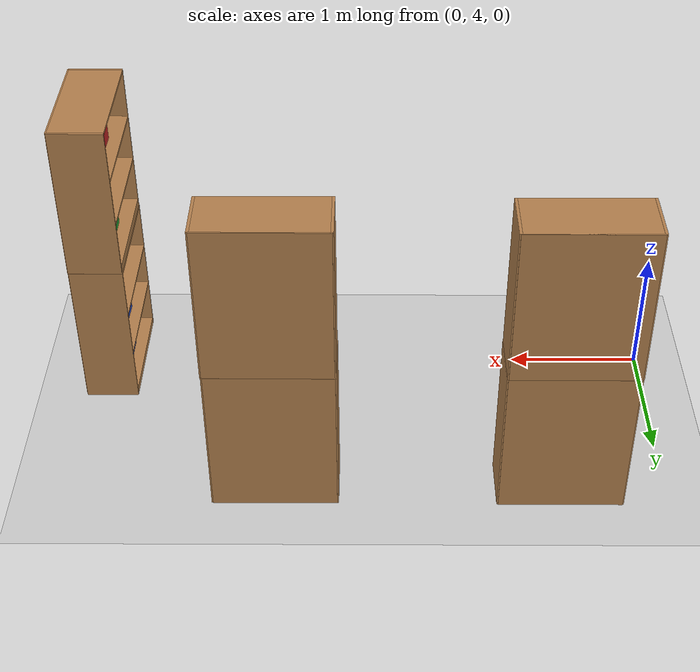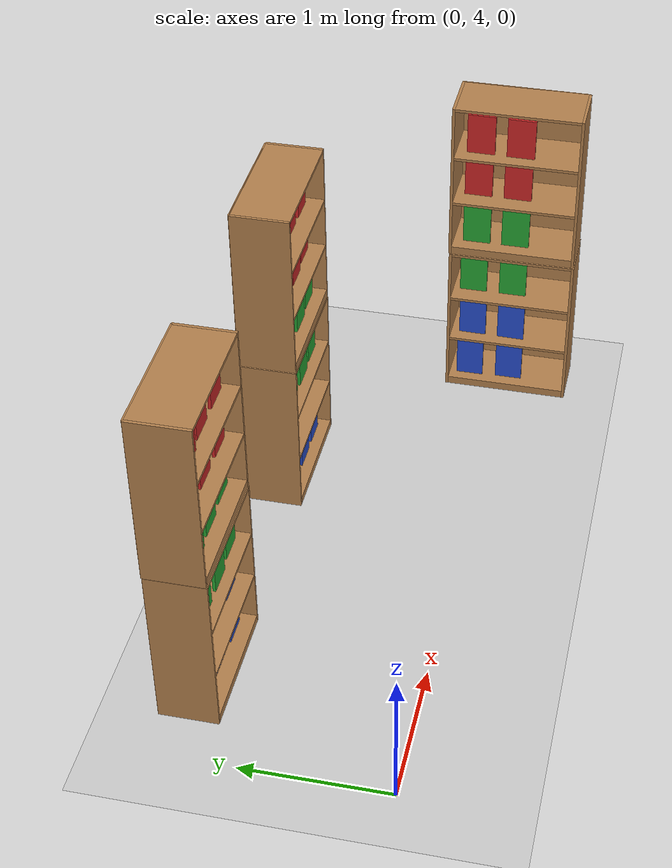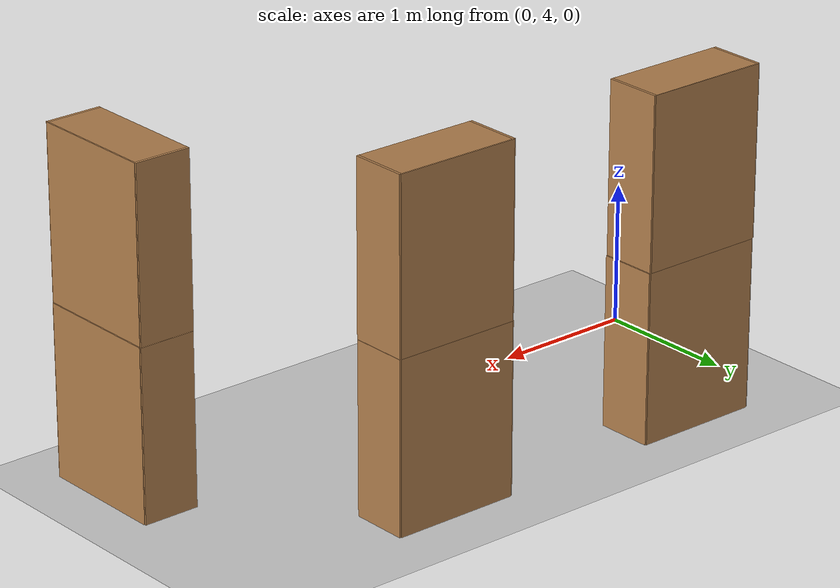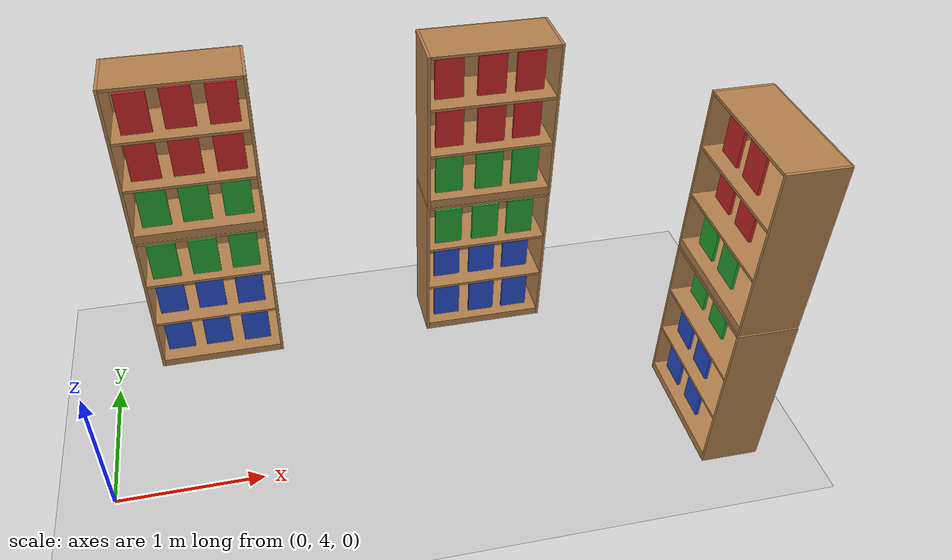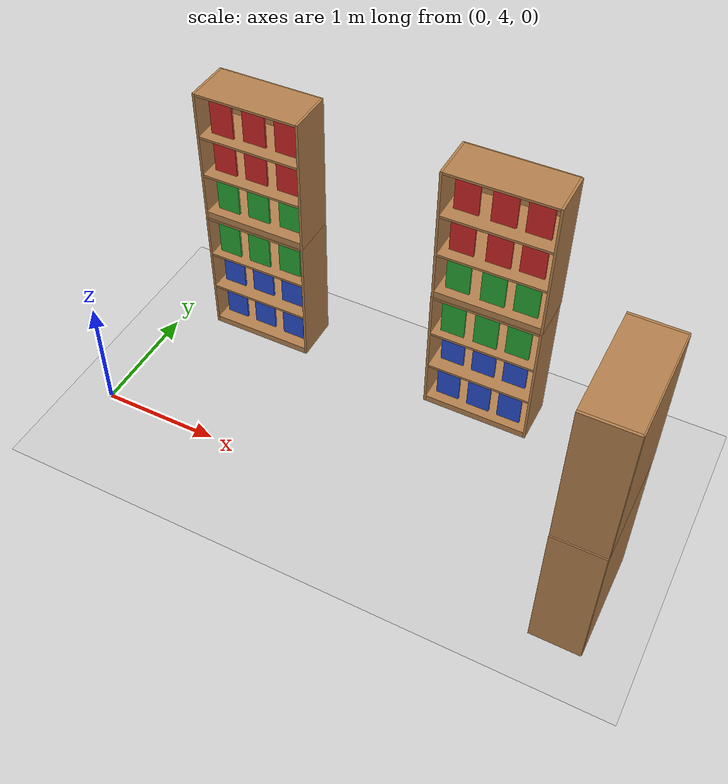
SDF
<sdf version="1.6">
 <world name="default">
  <model name="ground_plane">
   <static>1</static>
   <link name="link">
    <collision name="collision">
     <geometry><plane><normal>0 0 1</normal><size>100 100</size></plane></geometry>
     <surface><friction><ode><mu>100</mu><mu2>50</mu2></ode></friction></surface>
    </collision>
    <visual name="visual">
     <cast_shadows>0</cast_shadows>
     <geometry><plane><normal>0 0 1</normal><size>100 100</size></plane></geometry>
     <material>
      <script><uri>file://media/materials/scripts/gazebo.material</uri><name>Gazebo/Grey</name></script>
     </material>
    </visual>
   </link>
  </model>
  <model name="bookshelf">
   <static>1</static>
   <link name="link">
    <inertial><mass>1</mass></inertial>
    <collision name="back">
     <pose>0 0.005 0.6 0 -0 0</pose>
     <geometry><box><size>0.9 0.01 1.2</size></box></geometry>
    </collision>
    <visual name="visual1">
     <pose>0 0.005 0.6 0 -0 0</pose>
     <geometry><box><size>0.9 0.01 1.2</size></box></geometry>
     <material>
      <script><uri>file://media/materials/scripts/gazebo.material</uri><name>Gazebo/Wood</name></script>
     </material>
    </visual>
    <collision name="left_side">
     <pose>0.45 -0.195 0.6 0 -0 0</pose>
     <geometry><box><size>0.02 0.4 1.2</size></box></geometry>
    </collision>
    <visual name="visual2">
     <pose>0.45 -0.195 0.6 0 -0 0</pose>
     <geometry><box><size>0.02 0.4 1.2</size></box></geometry>
     <material>
      <script><uri>file://media/materials/scripts/gazebo.material</uri><name>Gazebo/Wood</name></script>
     </material>
    </visual>
    <collision name="right_side">
     <pose>-0.45 -0.195 0.6 0 -0 0</pose>
     <geometry><box><size>0.02 0.4 1.2</size></box></geometry>
    </collision>
    <visual name="visual3">
     <pose>-0.45 -0.195 0.6 0 -0 0</pose>
     <geometry><box><size>0.02 0.4 1.2</size></box></geometry>
     <material>
      <script><uri>file://media/materials/scripts/gazebo.material</uri><name>Gazebo/Wood</name></script>
     </material>
    </visual>
    <collision name="bottom">
     <pose>0 -0.195 0.03 0 -0 0</pose>
     <geometry><box><size>0.88 0.4 0.06</size></box></geometry>
    </collision>
    <visual name="visual4">
     <pose>0 -0.195 0.03 0 -0 0</pose>
     <geometry><box><size>0.88 0.4 0.06</size></box></geometry>
     <material>
      <script><uri>file://media/materials/scripts/gazebo.material</uri><name>Gazebo/Wood</name></script>
     </material>
    </visual>
    <collision name="top">
     <pose>0 -0.195 1.19 0 -0 0</pose>
     <geometry><box><size>0.88 0.4 0.02</size></box></geometry>
    </collision>
    <visual name="visual5">
     <pose>0 -0.195 1.19 0 -0 0</pose>
     <geometry><box><size>0.88 0.4 0.02</size></box></geometry>
     <material>
      <script><uri>file://media/materials/scripts/gazebo.material</uri><name>Gazebo/Wood</name></script>
     </material>
    </visual>
    <collision name="low_shelf">
     <pose>0 -0.195 0.43 0 -0 0</pose>
     <geometry><box><size>0.88 0.4 0.02</size></box></geometry>
    </collision>
    <visual name="visual6">
     <pose>0 -0.195 0.43 0 -0 0</pose>
     <geometry><box><size>0.88 0.4 0.02</size></box></geometry>
     <material>
      <script><uri>file://media/materials/scripts/gazebo.material</uri><name>Gazebo/Wood</name></script>
     </material>
    </visual>
    <collision name="high_shelf">
     <pose>0 -0.195 0.8 0 -0 0</pose>
     <geometry><box><size>0.88 0.4 0.02</size></box></geometry>
    </collision>
    <visual name="visual7">
     <pose>0 -0.195 0.8 0 -0 0</pose>
     <geometry><box><size>0.88 0.4 0.02</size></box></geometry>
     <material>
      <script><uri>file://media/materials/scripts/gazebo.material</uri><name>Gazebo/Wood</name></script>
     </material>
    </visual>
   </link>
   <pose>2.83268 5.58259 0 0 -0 0</pose>
  </model>
  <model name="bookshelf_1">
   <static>1</static>
   <link name="link">
    <inertial><mass>1</mass></inertial>
    <collision name="back">
     <pose>0 0.005 0.6 0 -0 0</pose>
     <geometry><box><size>0.9 0.01 1.2</size></box></geometry>
    </collision>
    <visual name="visual1">
     <pose>0 0.005 0.6 0 -0 0</pose>
     <geometry><box><size>0.9 0.01 1.2</size></box></geometry>
     <material>
      <script><uri>file://media/materials/scripts/gazebo.material</uri><name>Gazebo/Wood</name></script>
     </material>
    </visual>
    <collision name="left_side">
     <pose>0.45 -0.195 0.6 0 -0 0</pose>
     <geometry><box><size>0.02 0.4 1.2</size></box></geometry>
    </collision>
    <visual name="visual2">
     <pose>0.45 -0.195 0.6 0 -0 0</pose>
     <geometry><box><size>0.02 0.4 1.2</size></box></geometry>
     <material>
      <script><uri>file://media/materials/scripts/gazebo.material</uri><name>Gazebo/Wood</name></script>
     </material>
    </visual>
    <collision name="right_side">
     <pose>-0.45 -0.195 0.6 0 -0 0</pose>
     <geometry><box><size>0.02 0.4 1.2</size></box></geometry>
    </collision>
    <visual name="visual3">
     <pose>-0.45 -0.195 0.6 0 -0 0</pose>
     <geometry><box><size>0.02 0.4 1.2</size></box></geometry>
     <material>
      <script><uri>file://media/materials/scripts/gazebo.material</uri><name>Gazebo/Wood</name></script>
     </material>
    </visual>
    <collision name="bottom">
     <pose>0 -0.195 0.03 0 -0 0</pose>
     <geometry><box><size>0.88 0.4 0.06</size></box></geometry>
    </collision>
    <visual name="visual4">
     <pose>0 -0.195 0.03 0 -0 0</pose>
     <geometry><box><size>0.88 0.4 0.06</size></box></geometry>
     <material>
      <script><uri>file://media/materials/scripts/gazebo.material</uri><name>Gazebo/Wood</name></script>
     </material>
    </visual>
    <collision name="top">
     <pose>0 -0.195 1.19 0 -0 0</pose>
     <geometry><box><size>0.88 0.4 0.02</size></box></geometry>
    </collision>
    <visual name="visual5">
     <pose>0 -0.195 1.19 0 -0 0</pose>
     <geometry><box><size>0.88 0.4 0.02</size></box></geometry>
     <material>
      <script><uri>file://media/materials/scripts/gazebo.material</uri><name>Gazebo/Wood</name></script>
     </material>
    </visual>
    <collision name="low_shelf">
     <pose>0 -0.195 0.43 0 -0 0</pose>
     <geometry><box><size>0.88 0.4 0.02</size></box></geometry>
    </collision>
    <visual name="visual6">
     <pose>0 -0.195 0.43 0 -0 0</pose>
     <geometry><box><size>0.88 0.4 0.02</size></box></geometry>
     <material>
      <script><uri>file://media/materials/scripts/gazebo.material</uri><name>Gazebo/Wood</name></script>
     </material>
    </visual>
    <collision name="high_shelf">
     <pose>0 -0.195 0.8 0 -0 0</pose>
     <geometry><box><size>0.88 0.4 0.02</size></box></geometry>
    </collision>
    <visual name="visual7">
     <pose>0 -0.195 0.8 0 -0 0</pose>
     <geometry><box><size>0.88 0.4 0.02</size></box></geometry>
     <material>
      <script><uri>file://media/materials/scripts/gazebo.material</uri><name>Gazebo/Wood</name></script>
     </material>
    </visual>
   </link>
   <pose>0.770602 5.5901 0 0 -0 0</pose>
  </model>
  <model name="bookshelf_3_clone_clone_0">
   <static>1</static>
   <link name="link">
    <inertial><mass>1</mass></inertial>
    <collision name="back">
     <pose>0 0.005 0.6 0 -0 0</pose>
     <geometry><box><size>0.9 0.01 1.2</size></box></geometry>
    </collision>
    <visual name="visual1">
     <pose>0 0.005 0.6 0 -0 0</pose>
     <geometry><box><size>0.9 0.01 1.2</size></box></geometry>
     <material>
      <script><uri>file://media/materials/scripts/gazebo.material</uri><name>Gazebo/Wood</name></script>
     </material>
    </visual>
    <collision name="left_side">
     <pose>0.45 -0.195 0.6 0 -0 0</pose>
     <geometry><box><size>0.02 0.4 1.2</size></box></geometry>
    </collision>
    <visual name="visual2">
     <pose>0.45 -0.195 0.6 0 -0 0</pose>
     <geometry><box><size>0.02 0.4 1.2</size></box></geometry>
     <material>
      <script><uri>file://media/materials/scripts/gazebo.material</uri><name>Gazebo/Wood</name></script>
     </material>
    </visual>
    <collision name="right_side">
     <pose>-0.45 -0.195 0.6 0 -0 0</pose>
     <geometry><box><size>0.02 0.4 1.2</size></box></geometry>
    </collision>
    <visual name="visual3">
     <pose>-0.45 -0.195 0.6 0 -0 0</pose>
     <geometry><box><size>0.02 0.4 1.2</size></box></geometry>
     <material>
      <script><uri>file://media/materials/scripts/gazebo.material</uri><name>Gazebo/Wood</name></script>
     </material>
    </visual>
    <collision name="bottom">
     <pose>0 -0.195 0.03 0 -0 0</pose>
     <geometry><box><size>0.88 0.4 0.06</size></box></geometry>
    </collision>
    <visual name="visual4">
     <pose>0 -0.195 0.03 0 -0 0</pose>
     <geometry><box><size>0.88 0.4 0.06</size></box></geometry>
     <material>
      <script><uri>file://media/materials/scripts/gazebo.material</uri><name>Gazebo/Wood</name></script>
     </material>
    </visual>
    <collision name="top">
     <pose>0 -0.195 1.19 0 -0 0</pose>
     <geometry><box><size>0.88 0.4 0.02</size></box></geometry>
    </collision>
    <visual name="visual5">
     <pose>0 -0.195 1.19 0 -0 0</pose>
     <geometry><box><size>0.88 0.4 0.02</size></box></geometry>
     <material>
      <script><uri>file://media/materials/scripts/gazebo.material</uri><name>Gazebo/Wood</name></script>
     </material>
    </visual>
    <collision name="low_shelf">
     <pose>0 -0.195 0.43 0 -0 0</pose>
     <geometry><box><size>0.88 0.4 0.02</size></box></geometry>
    </collision>
    <visual name="visual6">
     <pose>0 -0.195 0.43 0 -0 0</pose>
     <geometry><box><size>0.88 0.4 0.02</size></box></geometry>
     <material>
      <script><uri>file://media/materials/scripts/gazebo.material</uri><name>Gazebo/Wood</name></script>
     </material>
    </visual>
    <collision name="high_shelf">
     <pose>0 -0.195 0.8 0 -0 0</pose>
     <geometry><box><size>0.88 0.4 0.02</size></box></geometry>
    </collision>
    <visual name="visual7">
     <pose>0 -0.195 0.8 0 -0 0</pose>
     <geometry><box><size>0.88 0.4 0.02</size></box></geometry>
     <material>
      <script><uri>file://media/materials/scripts/gazebo.material</uri><name>Gazebo/Wood</name></script>
     </material>
    </visual>
   </link>
   <pose>0.76852 5.59426 1.20481 0 -0 0</pose>
  </model>
  <model name="bookshelf_3_clone_clone_1">
   <static>1</static>
   <link name="link">
    <inertial><mass>1</mass></inertial>
    <collision name="back">
     <pose>0 0.005 0.6 0 -0 0</pose>
     <geometry><box><size>0.9 0.01 1.2</size></box></geometry>
    </collision>
    <visual name="visual1">
     <pose>0 0.005 0.6 0 -0 0</pose>
     <geometry><box><size>0.9 0.01 1.2</size></box></geometry>
     <material>
      <script><uri>file://media/materials/scripts/gazebo.material</uri><name>Gazebo/Wood</name></script>
     </material>
    </visual>
    <collision name="left_side">
     <pose>0.45 -0.195 0.6 0 -0 0</pose>
     <geometry><box><size>0.02 0.4 1.2</size></box></geometry>
    </collision>
    <visual name="visual2">
     <pose>0.45 -0.195 0.6 0 -0 0</pose>
     <geometry><box><size>0.02 0.4 1.2</size></box></geometry>
     <material>
      <script><uri>file://media/materials/scripts/gazebo.material</uri><name>Gazebo/Wood</name></script>
     </material>
    </visual>
    <collision name="right_side">
     <pose>-0.45 -0.195 0.6 0 -0 0</pose>
     <geometry><box><size>0.02 0.4 1.2</size></box></geometry>
    </collision>
    <visual name="visual3">
     <pose>-0.45 -0.195 0.6 0 -0 0</pose>
     <geometry><box><size>0.02 0.4 1.2</size></box></geometry>
     <material>
      <script><uri>file://media/materials/scripts/gazebo.material</uri><name>Gazebo/Wood</name></script>
     </material>
    </visual>
    <collision name="bottom">
     <pose>0 -0.195 0.03 0 -0 0</pose>
     <geometry><box><size>0.88 0.4 0.06</size></box></geometry>
    </collision>
    <visual name="visual4">
     <pose>0 -0.195 0.03 0 -0 0</pose>
     <geometry><box><size>0.88 0.4 0.06</size></box></geometry>
     <material>
      <script><uri>file://media/materials/scripts/gazebo.material</uri><name>Gazebo/Wood</name></script>
     </material>
    </visual>
    <collision name="top">
     <pose>0 -0.195 1.19 0 -0 0</pose>
     <geometry><box><size>0.88 0.4 0.02</size></box></geometry>
    </collision>
    <visual name="visual5">
     <pose>0 -0.195 1.19 0 -0 0</pose>
     <geometry><box><size>0.88 0.4 0.02</size></box></geometry>
     <material>
      <script><uri>file://media/materials/scripts/gazebo.material</uri><name>Gazebo/Wood</name></script>
     </material>
    </visual>
    <collision name="low_shelf">
     <pose>0 -0.195 0.43 0 -0 0</pose>
     <geometry><box><size>0.88 0.4 0.02</size></box></geometry>
    </collision>
    <visual name="visual6">
     <pose>0 -0.195 0.43 0 -0 0</pose>
     <geometry><box><size>0.88 0.4 0.02</size></box></geometry>
     <material>
      <script><uri>file://media/materials/scripts/gazebo.material</uri><name>Gazebo/Wood</name></script>
     </material>
    </visual>
    <collision name="high_shelf">
     <pose>0 -0.195 0.8 0 -0 0</pose>
     <geometry><box><size>0.88 0.4 0.02</size></box></geometry>
    </collision>
    <visual name="visual7">
     <pose>0 -0.195 0.8 0 -0 0</pose>
     <geometry><box><size>0.88 0.4 0.02</size></box></geometry>
     <material>
      <script><uri>file://media/materials/scripts/gazebo.material</uri><name>Gazebo/Wood</name></script>
     </material>
    </visual>
   </link>
   <pose>2.83627 5.58516 1.20481 0 -0 0</pose>
  </model>
  <model name="bookshelf_4_clone">
   <static>1</static>
   <link name="link">
    <inertial><mass>1</mass></inertial>
    <collision name="back">
     <pose>0 0.005 0.6 0 -0 0</pose>
     <geometry><box><size>0.9 0.01 1.2</size></box></geometry>
    </collision>
    <visual name="visual1">
     <pose>0 0.005 0.6 0 -0 0</pose>
     <geometry><box><size>0.9 0.01 1.2</size></box></geometry>
     <material>
      <script><uri>file://media/materials/scripts/gazebo.material</uri><name>Gazebo/Wood</name></script>
     </material>
    </visual>
    <collision name="left_side">
     <pose>0.45 -0.195 0.6 0 -0 0</pose>
     <geometry><box><size>0.02 0.4 1.2</size></box></geometry>
    </collision>
    <visual name="visual2">
     <pose>0.45 -0.195 0.6 0 -0 0</pose>
     <geometry><box><size>0.02 0.4 1.2</size></box></geometry>
     <material>
      <script><uri>file://media/materials/scripts/gazebo.material</uri><name>Gazebo/Wood</name></script>
     </material>
    </visual>
    <collision name="right_side">
     <pose>-0.45 -0.195 0.6 0 -0 0</pose>
     <geometry><box><size>0.02 0.4 1.2</size></box></geometry>
    </collision>
    <visual name="visual3">
     <pose>-0.45 -0.195 0.6 0 -0 0</pose>
     <geometry><box><size>0.02 0.4 1.2</size></box></geometry>
     <material>
      <script><uri>file://media/materials/scripts/gazebo.material</uri><name>Gazebo/Wood</name></script>
     </material>
    </visual>
    <collision name="bottom">
     <pose>0 -0.195 0.03 0 -0 0</pose>
     <geometry><box><size>0.88 0.4 0.06</size></box></geometry>
    </collision>
    <visual name="visual4">
     <pose>0 -0.195 0.03 0 -0 0</pose>
     <geometry><box><size>0.88 0.4 0.06</size></box></geometry>
     <material>
      <script><uri>file://media/materials/scripts/gazebo.material</uri><name>Gazebo/Wood</name></script>
     </material>
    </visual>
    <collision name="top">
     <pose>0 -0.195 1.19 0 -0 0</pose>
     <geometry><box><size>0.88 0.4 0.02</size></box></geometry>
    </collision>
    <visual name="visual5">
     <pose>0 -0.195 1.19 0 -0 0</pose>
     <geometry><box><size>0.88 0.4 0.02</size></box></geometry>
     <material>
      <script><uri>file://media/materials/scripts/gazebo.material</uri><name>Gazebo/Wood</name></script>
     </material>
    </visual>
    <collision name="low_shelf">
     <pose>0 -0.195 0.43 0 -0 0</pose>
     <geometry><box><size>0.88 0.4 0.02</size></box></geometry>
    </collision>
    <visual name="visual6">
     <pose>0 -0.195 0.43 0 -0 0</pose>
     <geometry><box><size>0.88 0.4 0.02</size></box></geometry>
     <material>
      <script><uri>file://media/materials/scripts/gazebo.material</uri><name>Gazebo/Wood</name></script>
     </material>
    </visual>
    <collision name="high_shelf">
     <pose>0 -0.195 0.8 0 -0 0</pose>
     <geometry><box><size>0.88 0.4 0.02</size></box></geometry>
    </collision>
    <visual name="visual7">
     <pose>0 -0.195 0.8 0 -0 0</pose>
     <geometry><box><size>0.88 0.4 0.02</size></box></geometry>
     <material>
      <script><uri>file://media/materials/scripts/gazebo.material</uri><name>Gazebo/Wood</name></script>
     </material>
    </visual>
   </link>
   <pose>4.37345 3.97883 0 0 0 -1.5727</pose>
  </model>
  <model name="bookshelf_4_clone_1_clone_clone">
   <static>1</static>
   <link name="link">
    <inertial><mass>1</mass></inertial>
    <collision name="back">
     <pose>0 0.005 0.6 0 -0 0</pose>
     <geometry><box><size>0.9 0.01 1.2</size></box></geometry>
    </collision>
    <visual name="visual1">
     <pose>0 0.005 0.6 0 -0 0</pose>
     <geometry><box><size>0.9 0.01 1.2</size></box></geometry>
     <material>
      <script><uri>file://media/materials/scripts/gazebo.material</uri><name>Gazebo/Wood</name></script>
     </material>
    </visual>
    <collision name="left_side">
     <pose>0.45 -0.195 0.6 0 -0 0</pose>
     <geometry><box><size>0.02 0.4 1.2</size></box></geometry>
    </collision>
    <visual name="visual2">
     <pose>0.45 -0.195 0.6 0 -0 0</pose>
     <geometry><box><size>0.02 0.4 1.2</size></box></geometry>
     <material>
      <script><uri>file://media/materials/scripts/gazebo.material</uri><name>Gazebo/Wood</name></script>
     </material>
    </visual>
    <collision name="right_side">
     <pose>-0.45 -0.195 0.6 0 -0 0</pose>
     <geometry><box><size>0.02 0.4 1.2</size></box></geometry>
    </collision>
    <visual name="visual3">
     <pose>-0.45 -0.195 0.6 0 -0 0</pose>
     <geometry><box><size>0.02 0.4 1.2</size></box></geometry>
     <material>
      <script><uri>file://media/materials/scripts/gazebo.material</uri><name>Gazebo/Wood</name></script>
     </material>
    </visual>
    <collision name="bottom">
     <pose>0 -0.195 0.03 0 -0 0</pose>
     <geometry><box><size>0.88 0.4 0.06</size></box></geometry>
    </collision>
    <visual name="visual4">
     <pose>0 -0.195 0.03 0 -0 0</pose>
     <geometry><box><size>0.88 0.4 0.06</size></box></geometry>
     <material>
      <script><uri>file://media/materials/scripts/gazebo.material</uri><name>Gazebo/Wood</name></script>
     </material>
    </visual>
    <collision name="top">
     <pose>0 -0.195 1.19 0 -0 0</pose>
     <geometry><box><size>0.88 0.4 0.02</size></box></geometry>
    </collision>
    <visual name="visual5">
     <pose>0 -0.195 1.19 0 -0 0</pose>
     <geometry><box><size>0.88 0.4 0.02</size></box></geometry>
     <material>
      <script><uri>file://media/materials/scripts/gazebo.material</uri><name>Gazebo/Wood</name></script>
     </material>
    </visual>
    <collision name="low_shelf">
     <pose>0 -0.195 0.43 0 -0 0</pose>
     <geometry><box><size>0.88 0.4 0.02</size></box></geometry>
    </collision>
    <visual name="visual6">
     <pose>0 -0.195 0.43 0 -0 0</pose>
     <geometry><box><size>0.88 0.4 0.02</size></box></geometry>
     <material>
      <script><uri>file://media/materials/scripts/gazebo.material</uri><name>Gazebo/Wood</name></script>
     </material>
    </visual>
    <collision name="high_shelf">
     <pose>0 -0.195 0.8 0 -0 0</pose>
     <geometry><box><size>0.88 0.4 0.02</size></box></geometry>
    </collision>
    <visual name="visual7">
     <pose>0 -0.195 0.8 0 -0 0</pose>
     <geometry><box><size>0.88 0.4 0.02</size></box></geometry>
     <material>
      <script><uri>file://media/materials/scripts/gazebo.material</uri><name>Gazebo/Wood</name></script>
     </material>
    </visual>
   </link>
   <pose>4.37481 3.98386 1.20741 0 0 -1.5727</pose>
  </model>
  <model name="bluecube_0_clone_clone_4">
   <static>1</static>
   <link name="link">
    <pose>0 0 0.21 0 -0 0</pose>
    <collision name="collision"><geometry><box><size>0.2 0.02 0.3</size></box></geometry></collision>
    <visual name="visual">
     <geometry><box><size>0.2 0.02 0.3</size></box></geometry>
     <material>
      <script><uri>file://media/materials/scripts/gazebo.material</uri><name>Gazebo/Blue</name></script>
     </material>
    </visual>
   </link>
   <pose>0.468014 5.31757 0 0 -0 0</pose>
  </model>
  <model name="bluecube_0_clone_clone_5">
   <static>1</static>
   <link name="link">
    <pose>0 0 0.21 0 -0 0</pose>
    <collision name="collision"><geometry><box><size>0.2 0.02 0.3</size></box></geometry></collision>
    <visual name="visual">
     <geometry><box><size>0.2 0.02 0.3</size></box></geometry>
     <material>
      <script><uri>file://media/materials/scripts/gazebo.material</uri><name>Gazebo/Blue</name></script>
     </material>
    </visual>
   </link>
   <pose>0.754162 5.31682 0 0 -0 0</pose>
  </model>
  <model name="bluecube_0_clone_clone_6">
   <static>1</static>
   <link name="link">
    <pose>0 0 0.21 0 -0 0</pose>
    <collision name="collision"><geometry><box><size>0.2 0.02 0.3</size></box></geometry></collision>
    <visual name="visual">
     <geometry><box><size>0.2 0.02 0.3</size></box></geometry>
     <material>
      <script><uri>file://media/materials/scripts/gazebo.material</uri><name>Gazebo/Blue</name></script>
     </material>
    </visual>
   </link>
   <pose>1.04547 5.30622 0 0 -0 0</pose>
  </model>
  <model name="bluecube_0_clone_clone_7">
   <static>1</static>
   <link name="link">
    <pose>0 0 0.21 0 -0 0</pose>
    <collision name="collision"><geometry><box><size>0.2 0.02 0.3</size></box></geometry></collision>
    <visual name="visual">
     <geometry><box><size>0.2 0.02 0.3</size></box></geometry>
     <material>
      <script><uri>file://media/materials/scripts/gazebo.material</uri><name>Gazebo/Blue</name></script>
     </material>
    </visual>
   </link>
   <pose>2.5505 5.28699 0 0 -0 0</pose>
  </model>
  <model name="bluecube_0_clone_clone_8">
   <static>1</static>
   <link name="link">
    <pose>0 0 0.21 0 -0 0</pose>
    <collision name="collision"><geometry><box><size>0.2 0.02 0.3</size></box></geometry></collision>
    <visual name="visual">
     <geometry><box><size>0.2 0.02 0.3</size></box></geometry>
     <material>
      <script><uri>file://media/materials/scripts/gazebo.material</uri><name>Gazebo/Blue</name></script>
     </material>
    </visual>
   </link>
   <pose>2.82936 5.27767 0 0 -0 0</pose>
  </model>
  <model name="bluecube_0_clone_clone_9">
   <static>1</static>
   <link name="link">
    <pose>0 0 0.21 0 -0 0</pose>
    <collision name="collision"><geometry><box><size>0.2 0.02 0.3</size></box></geometry></collision>
    <visual name="visual">
     <geometry><box><size>0.2 0.02 0.3</size></box></geometry>
     <material>
      <script><uri>file://media/materials/scripts/gazebo.material</uri><name>Gazebo/Blue</name></script>
     </material>
    </visual>
   </link>
   <pose>3.10055 5.27809 0 0 -0 0</pose>
  </model>
  <model name="bluecube_0_clone_clone_10_clone_clone_3">
   <static>1</static>
   <link name="link">
    <pose>0 0 0.21 0 -0 0</pose>
    <collision name="collision"><geometry><box><size>0.2 0.02 0.3</size></box></geometry></collision>
    <visual name="visual">
     <geometry><box><size>0.2 0.02 0.3</size></box></geometry>
     <material>
      <script><uri>file://media/materials/scripts/gazebo.material</uri><name>Gazebo/Blue</name></script>
     </material>
    </visual>
   </link>
   <pose>0.472026 5.31573 0.38097 0 -0 0</pose>
  </model>
  <model name="bluecube_0_clone_clone_10_clone_clone_4">
   <static>1</static>
   <link name="link">
    <pose>0 0 0.21 0 -0 0</pose>
    <collision name="collision"><geometry><box><size>0.2 0.02 0.3</size></box></geometry></collision>
    <visual name="visual">
     <geometry><box><size>0.2 0.02 0.3</size></box></geometry>
     <material>
      <script><uri>file://media/materials/scripts/gazebo.material</uri><name>Gazebo/Blue</name></script>
     </material>
    </visual>
   </link>
   <pose>0.756127 5.31976 0.38097 0 -0 0</pose>
  </model>
  <model name="bluecube_0_clone_clone_10_clone_clone_5">
   <static>1</static>
   <link name="link">
    <pose>0 0 0.21 0 -0 0</pose>
    <collision name="collision"><geometry><box><size>0.2 0.02 0.3</size></box></geometry></collision>
    <visual name="visual">
     <geometry><box><size>0.2 0.02 0.3</size></box></geometry>
     <material>
      <script><uri>file://media/materials/scripts/gazebo.material</uri><name>Gazebo/Blue</name></script>
     </material>
    </visual>
   </link>
   <pose>1.0445 5.31348 0.38097 0 -0 0</pose>
  </model>
  <model name="bluecube_0_clone_clone_10_clone_clone_6">
   <static>1</static>
   <link name="link">
    <pose>0 0 0.21 0 -0 0</pose>
    <collision name="collision"><geometry><box><size>0.2 0.02 0.3</size></box></geometry></collision>
    <visual name="visual">
     <geometry><box><size>0.2 0.02 0.3</size></box></geometry>
     <material>
      <script><uri>file://media/materials/scripts/gazebo.material</uri><name>Gazebo/Blue</name></script>
     </material>
    </visual>
   </link>
   <pose>2.55199 5.31798 0.38097 0 -0 0</pose>
  </model>
  <model name="bluecube_0_clone_clone_10_clone_clone_7">
   <static>1</static>
   <link name="link">
    <pose>0 0 0.21 0 -0 0</pose>
    <collision name="collision"><geometry><box><size>0.2 0.02 0.3</size></box></geometry></collision>
    <visual name="visual">
     <geometry><box><size>0.2 0.02 0.3</size></box></geometry>
     <material>
      <script><uri>file://media/materials/scripts/gazebo.material</uri><name>Gazebo/Blue</name></script>
     </material>
    </visual>
   </link>
   <pose>2.82669 5.31199 0.38097 0 -0 0</pose>
  </model>
  <model name="bluecube_0_clone_clone_10_clone_clone_8">
   <static>1</static>
   <link name="link">
    <pose>0 0 0.21 0 -0 0</pose>
    <collision name="collision"><geometry><box><size>0.2 0.02 0.3</size></box></geometry></collision>
    <visual name="visual">
     <geometry><box><size>0.2 0.02 0.3</size></box></geometry>
     <material>
      <script><uri>file://media/materials/scripts/gazebo.material</uri><name>Gazebo/Blue</name></script>
     </material>
    </visual>
   </link>
   <pose>3.0963 5.31613 0.38097 0 -0 0</pose>
  </model>
  <model name="bluecube_0_clone_clone_9_clone_11_clone">
   <static>1</static>
   <link name="link">
    <pose>0 0 0.21 0 -0 0</pose>
    <collision name="collision"><geometry><box><size>0.2 0.02 0.3</size></box></geometry></collision>
    <visual name="visual">
     <geometry><box><size>0.2 0.02 0.3</size></box></geometry>
     <material>
      <script><uri>file://media/materials/scripts/gazebo.material</uri><name>Gazebo/Blue</name></script>
     </material>
    </visual>
   </link>
   <pose>4.08017 3.96905 0 0 -0 1.57146</pose>
  </model>
  <model name="bluecube_0_clone_clone_9_clone_11_clone_clone">
   <static>1</static>
   <link name="link">
    <pose>0 0 0.21 0 -0 0</pose>
    <collision name="collision"><geometry><box><size>0.2 0.02 0.3</size></box></geometry></collision>
    <visual name="visual">
     <geometry><box><size>0.2 0.02 0.3</size></box></geometry>
     <material>
      <script><uri>file://media/materials/scripts/gazebo.material</uri><name>Gazebo/Blue</name></script>
     </material>
    </visual>
   </link>
   <pose>4.07051 4.26836 0 0 -0 1.57146</pose>
  </model>
  <model name="bluecube_0_clone_clone_10_clone_clone_21_clone">
   <static>1</static>
   <link name="link">
    <pose>0 0 0.21 0 -0 0</pose>
    <collision name="collision"><geometry><box><size>0.2 0.02 0.3</size></box></geometry></collision>
    <visual name="visual">
     <geometry><box><size>0.2 0.02 0.3</size></box></geometry>
     <material>
      <script><uri>file://media/materials/scripts/gazebo.material</uri><name>Gazebo/Blue</name></script>
     </material>
    </visual>
   </link>
   <pose>4.07606 3.96812 0.38097 0 -0 1.5507</pose>
  </model>
  <model name="bluecube_0_clone_clone_10_clone_clone_21_clone_clone">
   <static>1</static>
   <link name="link">
    <pose>0 0 0.21 0 -0 0</pose>
    <collision name="collision"><geometry><box><size>0.2 0.02 0.3</size></box></geometry></collision>
    <visual name="visual">
     <geometry><box><size>0.2 0.02 0.3</size></box></geometry>
     <material>
      <script><uri>file://media/materials/scripts/gazebo.material</uri><name>Gazebo/Blue</name></script>
     </material>
    </visual>
   </link>
   <pose>4.08251 4.25931 0.38097 0 -0 1.5507</pose>
  </model>
  <model name="greencube_clone_clone_4">
   <static>1</static>
   <link name="link">
    <pose>0 0 0.21 0 -0 0</pose>
    <collision name="collision"><geometry><box><size>0.2 0.02 0.3</size></box></geometry></collision>
    <visual name="visual">
     <geometry><box><size>0.2 0.02 0.3</size></box></geometry>
     <material>
      <script><uri>file://media/materials/scripts/gazebo.material</uri><name>Gazebo/Green</name></script>
     </material>
    </visual>
   </link>
   <pose>0.479402 5.2791 0.751098 0 -0 0</pose>
  </model>
  <model name="greencube_clone_clone_5">
   <static>1</static>
   <link name="link">
    <pose>0 0 0.21 0 -0 0</pose>
    <collision name="collision"><geometry><box><size>0.2 0.02 0.3</size></box></geometry></collision>
    <visual name="visual">
     <geometry><box><size>0.2 0.02 0.3</size></box></geometry>
     <material>
      <script><uri>file://media/materials/scripts/gazebo.material</uri><name>Gazebo/Green</name></script>
     </material>
    </visual>
   </link>
   <pose>0.76459 5.27927 0.751098 0 -0 0</pose>
  </model>
  <model name="greencube_clone_clone_6">
   <static>1</static>
   <link name="link">
    <pose>0 0 0.21 0 -0 0</pose>
    <collision name="collision"><geometry><box><size>0.2 0.02 0.3</size></box></geometry></collision>
    <visual name="visual">
     <geometry><box><size>0.2 0.02 0.3</size></box></geometry>
     <material>
      <script><uri>file://media/materials/scripts/gazebo.material</uri><name>Gazebo/Green</name></script>
     </material>
    </visual>
   </link>
   <pose>1.04906 5.29278 0.751098 0 -0 0</pose>
  </model>
  <model name="greencube_clone_clone_7">
   <static>1</static>
   <link name="link">
    <pose>0 0 0.21 0 -0 0</pose>
    <collision name="collision"><geometry><box><size>0.2 0.02 0.3</size></box></geometry></collision>
    <visual name="visual">
     <geometry><box><size>0.2 0.02 0.3</size></box></geometry>
     <material>
      <script><uri>file://media/materials/scripts/gazebo.material</uri><name>Gazebo/Green</name></script>
     </material>
    </visual>
   </link>
   <pose>2.55031 5.26868 0.751098 0 -0 0</pose>
  </model>
  <model name="greencube_clone_clone_8">
   <static>1</static>
   <link name="link">
    <pose>0 0 0.21 0 -0 0</pose>
    <collision name="collision"><geometry><box><size>0.2 0.02 0.3</size></box></geometry></collision>
    <visual name="visual">
     <geometry><box><size>0.2 0.02 0.3</size></box></geometry>
     <material>
      <script><uri>file://media/materials/scripts/gazebo.material</uri><name>Gazebo/Green</name></script>
     </material>
    </visual>
   </link>
   <pose>2.82967 5.26886 0.751098 0 -0 0</pose>
  </model>
  <model name="greencube_clone_clone_9">
   <static>1</static>
   <link name="link">
    <pose>0 0 0.21 0 -0 0</pose>
    <collision name="collision"><geometry><box><size>0.2 0.02 0.3</size></box></geometry></collision>
    <visual name="visual">
     <geometry><box><size>0.2 0.02 0.3</size></box></geometry>
     <material>
      <script><uri>file://media/materials/scripts/gazebo.material</uri><name>Gazebo/Green</name></script>
     </material>
    </visual>
   </link>
   <pose>3.09847 5.27724 0.751098 0 -0 0</pose>
  </model>
  <model name="greencube_clone_clone_22_clone">
   <static>1</static>
   <link name="link">
    <pose>0 0 0.21 0 -0 0</pose>
    <collision name="collision"><geometry><box><size>0.2 0.02 0.3</size></box></geometry></collision>
    <visual name="visual">
     <geometry><box><size>0.2 0.02 0.3</size></box></geometry>
     <material>
      <script><uri>file://media/materials/scripts/gazebo.material</uri><name>Gazebo/Green</name></script>
     </material>
    </visual>
   </link>
   <pose>4.12258 3.97614 0.751098 0 -0 1.56837</pose>
  </model>
  <model name="greencube_clone_clone_22_clone_clone_0">
   <static>1</static>
   <link name="link">
    <pose>0 0 0.21 0 -0 0</pose>
    <collision name="collision"><geometry><box><size>0.2 0.02 0.3</size></box></geometry></collision>
    <visual name="visual">
     <geometry><box><size>0.2 0.02 0.3</size></box></geometry>
     <material>
      <script><uri>file://media/materials/scripts/gazebo.material</uri><name>Gazebo/Green</name></script>
     </material>
    </visual>
   </link>
   <pose>4.1216 4.27019 0.751098 0 -0 1.56837</pose>
  </model>
  <model name="greencube_clone_clone_0_clone_clone_clone_4">
   <static>1</static>
   <link name="link">
    <pose>0 0 0.21 0 -0 0</pose>
    <collision name="collision"><geometry><box><size>0.2 0.02 0.3</size></box></geometry></collision>
    <visual name="visual">
     <geometry><box><size>0.2 0.02 0.3</size></box></geometry>
     <material>
      <script><uri>file://media/materials/scripts/gazebo.material</uri><name>Gazebo/Green</name></script>
     </material>
    </visual>
   </link>
   <pose>0.488177 5.2983 1.20525 0 -0 0</pose>
  </model>
  <model name="greencube_clone_clone_0_clone_clone_clone_5">
   <static>1</static>
   <link name="link">
    <pose>0 0 0.21 0 -0 0</pose>
    <collision name="collision"><geometry><box><size>0.2 0.02 0.3</size></box></geometry></collision>
    <visual name="visual">
     <geometry><box><size>0.2 0.02 0.3</size></box></geometry>
     <material>
      <script><uri>file://media/materials/scripts/gazebo.material</uri><name>Gazebo/Green</name></script>
     </material>
    </visual>
   </link>
   <pose>0.76769 5.30905 1.20525 0 -0 0</pose>
  </model>
  <model name="greencube_clone_clone_0_clone_clone_clone_6">
   <static>1</static>
   <link name="link">
    <pose>0 0 0.21 0 -0 0</pose>
    <collision name="collision"><geometry><box><size>0.2 0.02 0.3</size></box></geometry></collision>
    <visual name="visual">
     <geometry><box><size>0.2 0.02 0.3</size></box></geometry>
     <material>
      <script><uri>file://media/materials/scripts/gazebo.material</uri><name>Gazebo/Green</name></script>
     </material>
    </visual>
   </link>
   <pose>1.05684 5.32016 1.20525 0 -0 0</pose>
  </model>
  <model name="greencube_clone_clone_0_clone_clone_clone_7">
   <static>1</static>
   <link name="link">
    <pose>0 0 0.21 0 -0 0</pose>
    <collision name="collision"><geometry><box><size>0.2 0.02 0.3</size></box></geometry></collision>
    <visual name="visual">
     <geometry><box><size>0.2 0.02 0.3</size></box></geometry>
     <material>
      <script><uri>file://media/materials/scripts/gazebo.material</uri><name>Gazebo/Green</name></script>
     </material>
    </visual>
   </link>
   <pose>2.55313 5.28773 1.20525 0 -0 0</pose>
  </model>
  <model name="greencube_clone_clone_0_clone_clone_clone_8">
   <static>1</static>
   <link name="link">
    <pose>0 0 0.21 0 -0 0</pose>
    <collision name="collision"><geometry><box><size>0.2 0.02 0.3</size></box></geometry></collision>
    <visual name="visual">
     <geometry><box><size>0.2 0.02 0.3</size></box></geometry>
     <material>
      <script><uri>file://media/materials/scripts/gazebo.material</uri><name>Gazebo/Green</name></script>
     </material>
    </visual>
   </link>
   <pose>2.84588 5.2789 1.20525 0 -0 0</pose>
  </model>
  <model name="greencube_clone_clone_0_clone_clone_clone_9">
   <static>1</static>
   <link name="link">
    <pose>0 0 0.21 0 -0 0</pose>
    <collision name="collision"><geometry><box><size>0.2 0.02 0.3</size></box></geometry></collision>
    <visual name="visual">
     <geometry><box><size>0.2 0.02 0.3</size></box></geometry>
     <material>
      <script><uri>file://media/materials/scripts/gazebo.material</uri><name>Gazebo/Green</name></script>
     </material>
    </visual>
   </link>
   <pose>3.11452 5.28922 1.20525 0 -0 0</pose>
  </model>
  <model name="greencube_clone_clone_22_clone_clone_10_clone_clone_clone_10">
   <static>1</static>
   <link name="link">
    <pose>0 0 0.21 0 -0 0</pose>
    <collision name="collision"><geometry><box><size>0.2 0.02 0.3</size></box></geometry></collision>
    <visual name="visual">
     <geometry><box><size>0.2 0.02 0.3</size></box></geometry>
     <material>
      <script><uri>file://media/materials/scripts/gazebo.material</uri><name>Gazebo/Green</name></script>
     </material>
    </visual>
   </link>
   <pose>4.08636 4.25471 1.21098 0 -0 1.56837</pose>
  </model>
  <model name="greencube_clone_clone_22_clone_clone_10_clone_clone_clone_11">
   <static>1</static>
   <link name="link">
    <pose>0 0 0.21 0 -0 0</pose>
    <collision name="collision"><geometry><box><size>0.2 0.02 0.3</size></box></geometry></collision>
    <visual name="visual">
     <geometry><box><size>0.2 0.02 0.3</size></box></geometry>
     <material>
      <script><uri>file://media/materials/scripts/gazebo.material</uri><name>Gazebo/Green</name></script>
     </material>
    </visual>
   </link>
   <pose>4.08711 3.97171 1.21098 0 -0 1.56837</pose>
  </model>
  <model name="redcube_clone_clone_4">
   <static>1</static>
   <link name="link">
    <pose>0 0 0.21 0 -0 0</pose>
    <collision name="collision"><geometry><box><size>0.2 0.02 0.3</size></box></geometry></collision>
    <visual name="visual">
     <geometry><box><size>0.2 0.02 0.3</size></box></geometry>
     <material>
      <script><uri>file://media/materials/scripts/gazebo.material</uri><name>Gazebo/Red</name></script>
     </material>
    </visual>
   </link>
   <pose>0.484963 5.31098 1.58534 0 -0 0</pose>
  </model>
  <model name="redcube_clone_clone_5">
   <static>1</static>
   <link name="link">
    <pose>0 0 0.21 0 -0 0</pose>
    <collision name="collision"><geometry><box><size>0.2 0.02 0.3</size></box></geometry></collision>
    <visual name="visual">
     <geometry><box><size>0.2 0.02 0.3</size></box></geometry>
     <material>
      <script><uri>file://media/materials/scripts/gazebo.material</uri><name>Gazebo/Red</name></script>
     </material>
    </visual>
   </link>
   <pose>0.764757 5.31681 1.58534 0 -0 0</pose>
  </model>
  <model name="redcube_clone_clone_6">
   <static>1</static>
   <link name="link">
    <pose>0 0 0.21 0 -0 0</pose>
    <collision name="collision"><geometry><box><size>0.2 0.02 0.3</size></box></geometry></collision>
    <visual name="visual">
     <geometry><box><size>0.2 0.02 0.3</size></box></geometry>
     <material>
      <script><uri>file://media/materials/scripts/gazebo.material</uri><name>Gazebo/Red</name></script>
     </material>
    </visual>
   </link>
   <pose>1.0556 5.3147 1.58534 0 -0 0</pose>
  </model>
  <model name="redcube_clone_clone_7">
   <static>1</static>
   <link name="link">
    <pose>0 0 0.21 0 -0 0</pose>
    <collision name="collision"><geometry><box><size>0.2 0.02 0.3</size></box></geometry></collision>
    <visual name="visual">
     <geometry><box><size>0.2 0.02 0.3</size></box></geometry>
     <material>
      <script><uri>file://media/materials/scripts/gazebo.material</uri><name>Gazebo/Red</name></script>
     </material>
    </visual>
   </link>
   <pose>2.55354 5.29919 1.58534 0 -0 0</pose>
  </model>
  <model name="redcube_clone_clone_8">
   <static>1</static>
   <link name="link">
    <pose>0 0 0.21 0 -0 0</pose>
    <collision name="collision"><geometry><box><size>0.2 0.02 0.3</size></box></geometry></collision>
    <visual name="visual">
     <geometry><box><size>0.2 0.02 0.3</size></box></geometry>
     <material>
      <script><uri>file://media/materials/scripts/gazebo.material</uri><name>Gazebo/Red</name></script>
     </material>
    </visual>
   </link>
   <pose>2.84952 5.29703 1.58534 0 -0 0</pose>
  </model>
  <model name="redcube_clone_clone_9">
   <static>1</static>
   <link name="link">
    <pose>0 0 0.21 0 -0 0</pose>
    <collision name="collision"><geometry><box><size>0.2 0.02 0.3</size></box></geometry></collision>
    <visual name="visual">
     <geometry><box><size>0.2 0.02 0.3</size></box></geometry>
     <material>
      <script><uri>file://media/materials/scripts/gazebo.material</uri><name>Gazebo/Red</name></script>
     </material>
    </visual>
   </link>
   <pose>3.11363 5.31042 1.58534 0 -0 0</pose>
  </model>
  <model name="redcube_clone_clone_22_clone_clone_10">
   <static>1</static>
   <link name="link">
    <pose>0 0 0.21 0 -0 0</pose>
    <collision name="collision"><geometry><box><size>0.2 0.02 0.3</size></box></geometry></collision>
    <visual name="visual">
     <geometry><box><size>0.2 0.02 0.3</size></box></geometry>
     <material>
      <script><uri>file://media/materials/scripts/gazebo.material</uri><name>Gazebo/Red</name></script>
     </material>
    </visual>
   </link>
   <pose>4.12765 4.26021 1.58534 0 -0 1.55372</pose>
  </model>
  <model name="redcube_clone_clone_22_clone_clone_11">
   <static>1</static>
   <link name="link">
    <pose>0 0 0.21 0 -0 0</pose>
    <collision name="collision"><geometry><box><size>0.2 0.02 0.3</size></box></geometry></collision>
    <visual name="visual">
     <geometry><box><size>0.2 0.02 0.3</size></box></geometry>
     <material>
      <script><uri>file://media/materials/scripts/gazebo.material</uri><name>Gazebo/Red</name></script>
     </material>
    </visual>
   </link>
   <pose>4.12436 3.97461 1.58534 0 -0 1.55372</pose>
  </model>
  <model name="redcube_clone_clone_22_clone_clone_22_clone_clone_7">
   <static>1</static>
   <link name="link">
    <pose>0 0 0.21 0 -0 0</pose>
    <collision name="collision"><geometry><box><size>0.2 0.02 0.3</size></box></geometry></collision>
    <visual name="visual">
     <geometry><box><size>0.2 0.02 0.3</size></box></geometry>
     <material>
      <script><uri>file://media/materials/scripts/gazebo.material</uri><name>Gazebo/Red</name></script>
     </material>
    </visual>
   </link>
   <pose>4.0911 4.24838 1.95914 0 -0 1.55372</pose>
  </model>
  <model name="redcube_clone_clone_22_clone_clone_22_clone_clone_8">
   <static>1</static>
   <link name="link">
    <pose>0 0 0.21 0 -0 0</pose>
    <collision name="collision"><geometry><box><size>0.2 0.02 0.3</size></box></geometry></collision>
    <visual name="visual">
     <geometry><box><size>0.2 0.02 0.3</size></box></geometry>
     <material>
      <script><uri>file://media/materials/scripts/gazebo.material</uri><name>Gazebo/Red</name></script>
     </material>
    </visual>
   </link>
   <pose>4.08543 3.96351 1.95914 0 -0 1.55372</pose>
  </model>
  <model name="redcube_clone_clone_clone_clone_clone_4">
   <static>1</static>
   <link name="link">
    <pose>0 0 0.21 0 -0 0</pose>
    <collision name="collision"><geometry><box><size>0.2 0.02 0.3</size></box></geometry></collision>
    <visual name="visual">
     <geometry><box><size>0.2 0.02 0.3</size></box></geometry>
     <material>
      <script><uri>file://media/materials/scripts/gazebo.material</uri><name>Gazebo/Red</name></script>
     </material>
    </visual>
   </link>
   <pose>0.492753 5.29755 1.95637 0 -0 0</pose>
  </model>
  <model name="redcube_clone_clone_clone_clone_clone_5">
   <static>1</static>
   <link name="link">
    <pose>0 0 0.21 0 -0 0</pose>
    <collision name="collision"><geometry><box><size>0.2 0.02 0.3</size></box></geometry></collision>
    <visual name="visual">
     <geometry><box><size>0.2 0.02 0.3</size></box></geometry>
     <material>
      <script><uri>file://media/materials/scripts/gazebo.material</uri><name>Gazebo/Red</name></script>
     </material>
    </visual>
   </link>
   <pose>0.772554 5.31608 1.95637 0 -0 0</pose>
  </model>
  <model name="redcube_clone_clone_clone_clone_clone_6">
   <static>1</static>
   <link name="link">
    <pose>0 0 0.21 0 -0 0</pose>
    <collision name="collision"><geometry><box><size>0.2 0.02 0.3</size></box></geometry></collision>
    <visual name="visual">
     <geometry><box><size>0.2 0.02 0.3</size></box></geometry>
     <material>
      <script><uri>file://media/materials/scripts/gazebo.material</uri><name>Gazebo/Red</name></script>
     </material>
    </visual>
   </link>
   <pose>1.05926 5.31554 1.95637 0 -0 0</pose>
  </model>
  <model name="redcube_clone_clone_clone_clone_clone_7">
   <static>1</static>
   <link name="link">
    <pose>0 0 0.21 0 -0 0</pose>
    <collision name="collision"><geometry><box><size>0.2 0.02 0.3</size></box></geometry></collision>
    <visual name="visual">
     <geometry><box><size>0.2 0.02 0.3</size></box></geometry>
     <material>
      <script><uri>file://media/materials/scripts/gazebo.material</uri><name>Gazebo/Red</name></script>
     </material>
    </visual>
   </link>
   <pose>2.55156 5.32441 1.95637 0 -0 0</pose>
  </model>
  <model name="redcube_clone_clone_clone_clone_clone_8">
   <static>1</static>
   <link name="link">
    <pose>0 0 0.21 0 -0 0</pose>
    <collision name="collision"><geometry><box><size>0.2 0.02 0.3</size></box></geometry></collision>
    <visual name="visual">
     <geometry><box><size>0.2 0.02 0.3</size></box></geometry>
     <material>
      <script><uri>file://media/materials/scripts/gazebo.material</uri><name>Gazebo/Red</name></script>
     </material>
    </visual>
   </link>
   <pose>2.8472 5.31753 1.95637 0 -0 0</pose>
  </model>
  <model name="redcube_clone_clone_clone_clone_clone_9">
   <static>1</static>
   <link name="link">
    <pose>0 0 0.21 0 -0 0</pose>
    <collision name="collision"><geometry><box><size>0.2 0.02 0.3</size></box></geometry></collision>
    <visual name="visual">
     <geometry><box><size>0.2 0.02 0.3</size></box></geometry>
     <material>
      <script><uri>file://media/materials/scripts/gazebo.material</uri><name>Gazebo/Red</name></script>
     </material>
    </visual>
   </link>
   <pose>3.11627 5.31662 1.95637 0 -0 0</pose>
  </model>
 </world>
</sdf>
